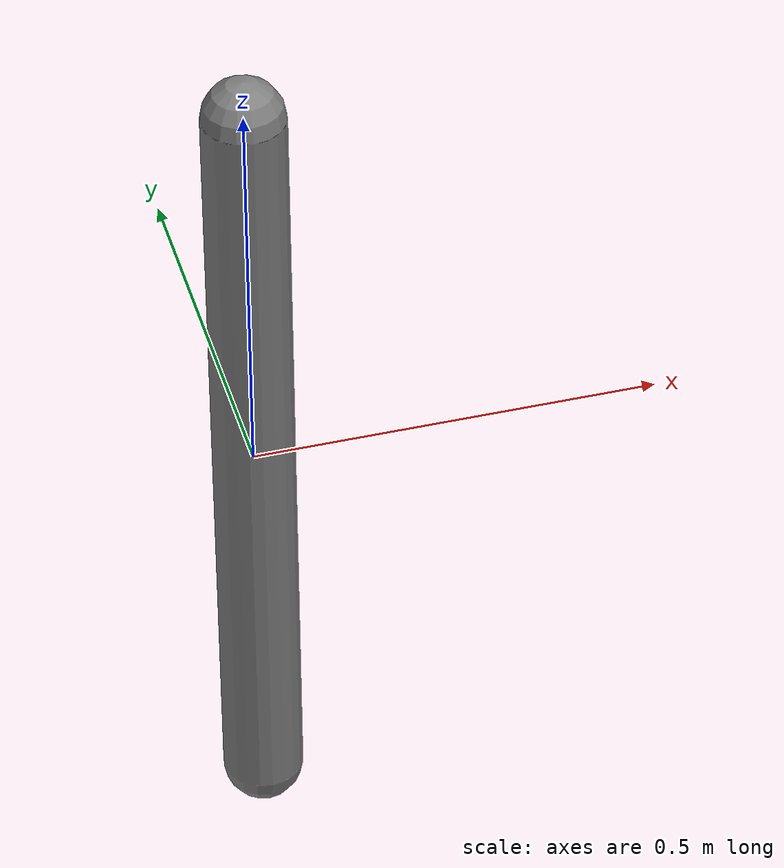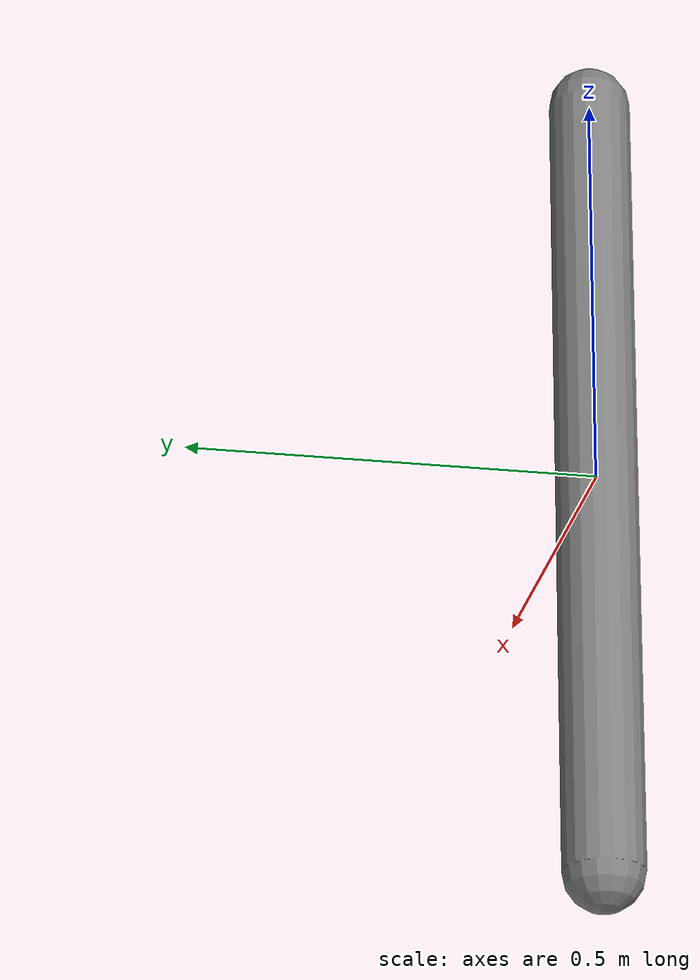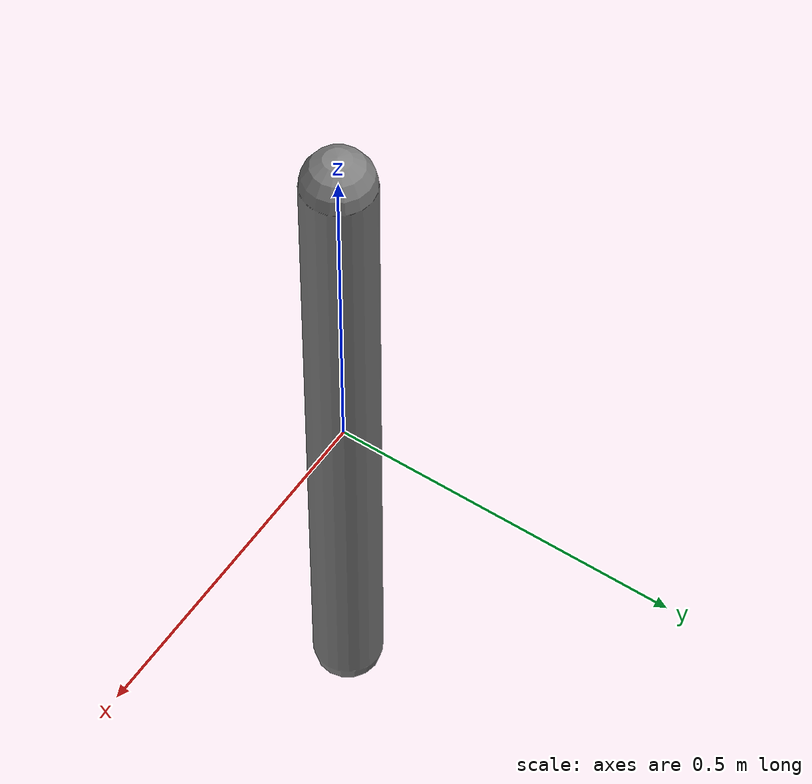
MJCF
<mujoco model="limited_joint">
            <compiler angle="radian"/>
            <option gravity="0 0 0" timestep="0.001"/>
            <worldbody>
                <body name="arm" pos="0 0 0">
                    <joint name="limited" type="hinge" axis="0 1 0" limited="true" range="-0.5 0.5" damping="10.0"/>
                    <geom type="capsule" size="0.05 0.5" mass="1.0"/>
                </body>
            </worldbody>
        </mujoco>
